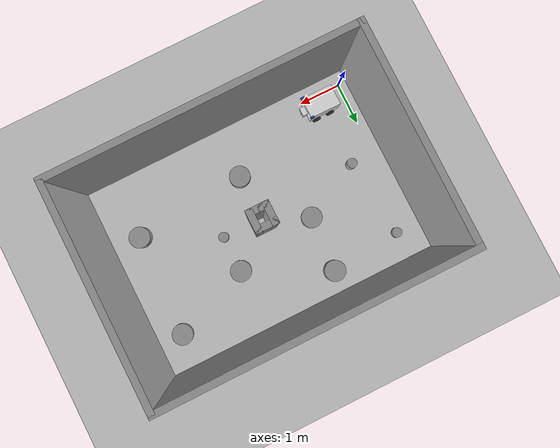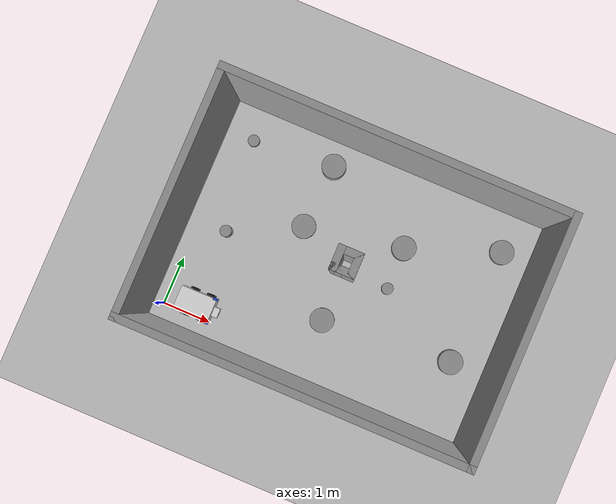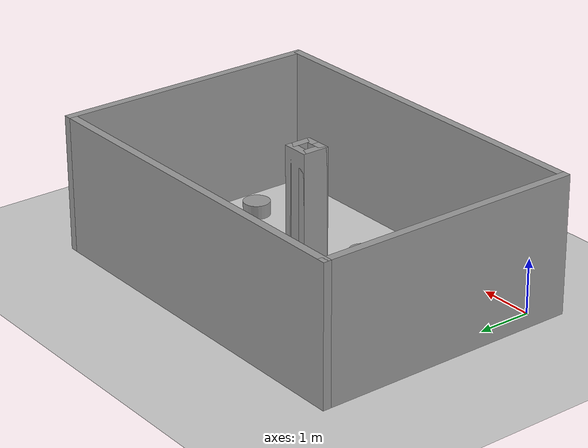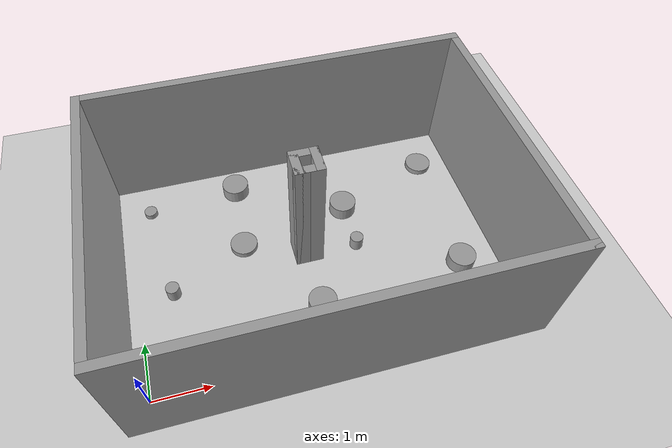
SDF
<sdf version="1.6">
 <world name="default">
  <light name="sun" type="directional">
   <pose>0 0 10 0 -0 0</pose>
   <diffuse>0.8 0.8 0.8 1</diffuse>
   <specular>0.2 0.2 0.2 1</specular>
   <attenuation>
    <range>1000</range>
    <constant>0.9</constant>
    <linear>0.01</linear>
    <quadratic>0.001</quadratic>
   </attenuation>
   <direction>-0.5 0.1 -0.9</direction>
  </light>
  <model name="ground_plane">
   <static>1</static>
   <link name="link">
    <collision name="collision">
     <geometry><plane><normal>0 0 1</normal><size>100 100</size></plane></geometry>
     <surface>
      <contact><collide_bitmask>65535</collide_bitmask></contact>
      <friction><ode><mu>100</mu><mu2>50</mu2></ode></friction>
     </surface>
    </collision>
    <visual name="visual">
     <cast_shadows>0</cast_shadows>
     <geometry><plane><normal>0 0 1</normal><size>100 100</size></plane></geometry>
     <material>
      <script><uri>file://media/materials/scripts/gazebo.material</uri><name>Gazebo/Grey</name></script>
     </material>
    </visual>
   </link>
  </model>
  <gravity>0 0 -9.8</gravity>
  <magnetic_field>6e-06 2.3e-05 -4.2e-05</magnetic_field>
  <atmosphere type="adiabatic"/>
  <physics name="default_physics" default="0" type="ode">
   <max_step_size>0.001</max_step_size>
   <real_time_factor>1</real_time_factor>
   <real_time_update_rate>1000</real_time_update_rate>
  </physics>
  <scene><ambient>0.4 0.4 0.4 1</ambient><background>0.7 0.7 0.7 1</background><shadows>1</shadows></scene>
  <audio><device>default</device></audio>
  <spherical_coordinates>
   <surface_model>EARTH_WGS84</surface_model>
   <latitude_deg>0</latitude_deg>
   <longitude_deg>0</longitude_deg>
   <elevation>0</elevation>
   <heading_deg>0</heading_deg>
  </spherical_coordinates>
  <model name="Arena">
   <link name="Wall_38">
    <pose>0.212613 2.64146 0 0 -0 3.14159</pose>
    <visual name="Wall_38_Visual">
     <pose>0 0 1.25 0 -0 0</pose>
     <geometry><box><size>7 0.15 2.5</size></box></geometry>
     <material>
      <script><uri>file://media/materials/scripts/gazebo.material</uri><name>Gazebo/Grey</name></script>
      <ambient>1 1 1 1</ambient>
     </material>
     <meta><layer>0</layer></meta>
    </visual>
    <collision name="Wall_38_Collision">
     <pose>0 0 1.25 0 -0 0</pose>
     <geometry><box><size>7 0.15 2.5</size></box></geometry>
     <surface>
      <friction>
       <ode><mu>1</mu><mu2>1</mu2><fdir1>0 0 0</fdir1><slip1>0</slip1><slip2>0</slip2></ode>
       <torsional>
        <coefficient>1</coefficient>
        <patch_radius>0</patch_radius>
        <surface_radius>0</surface_radius>
        <use_patch_radius>1</use_patch_radius>
        <ode><slip>0</slip></ode>
       </torsional>
      </friction>
      <bounce><restitution_coefficient>0</restitution_coefficient><threshold>1e+06</threshold></bounce>
      <contact>
       <collide_without_contact>0</collide_without_contact>
       <collide_without_contact_bitmask>1</collide_without_contact_bitmask>
       <collide_bitmask>1</collide_bitmask>
       <ode>
        <soft_cfm>0</soft_cfm>
        <soft_erp>0.2</soft_erp>
        <kp>1e+13</kp>
        <kd>1</kd>
        <max_vel>0.01</max_vel>
        <min_depth>0</min_depth>
       </ode>
       <bullet>
        <split_impulse>1</split_impulse>
        <split_impulse_penetration_threshold>-0.01</split_impulse_penetration_threshold>
        <soft_cfm>0</soft_cfm>
        <soft_erp>0.2</soft_erp>
        <kp>1e+13</kp>
        <kd>1</kd>
       </bullet>
      </contact>
     </surface>
    </collision>
   </link>
   <link name="Wall_39">
    <pose>-3.21239 0.216461 0 0 0 -1.5708</pose>
    <visual name="Wall_39_Visual">
     <pose>0 0 1.25 0 -0 0</pose>
     <geometry><box><size>5 0.15 2.5</size></box></geometry>
     <material>
      <script><uri>file://media/materials/scripts/gazebo.material</uri><name>Gazebo/Grey</name></script>
      <ambient>1 1 1 1</ambient>
     </material>
     <meta><layer>0</layer></meta>
    </visual>
    <collision name="Wall_39_Collision">
     <pose>0 0 1.25 0 -0 0</pose>
     <geometry><box><size>5 0.15 2.5</size></box></geometry>
     <surface>
      <friction>
       <ode><mu>1</mu><mu2>1</mu2><fdir1>0 0 0</fdir1><slip1>0</slip1><slip2>0</slip2></ode>
       <torsional>
        <coefficient>1</coefficient>
        <patch_radius>0</patch_radius>
        <surface_radius>0</surface_radius>
        <use_patch_radius>1</use_patch_radius>
        <ode><slip>0</slip></ode>
       </torsional>
      </friction>
      <bounce><restitution_coefficient>0</restitution_coefficient><threshold>1e+06</threshold></bounce>
      <contact>
       <collide_without_contact>0</collide_without_contact>
       <collide_without_contact_bitmask>1</collide_without_contact_bitmask>
       <collide_bitmask>1</collide_bitmask>
       <ode>
        <soft_cfm>0</soft_cfm>
        <soft_erp>0.2</soft_erp>
        <kp>1e+13</kp>
        <kd>1</kd>
        <max_vel>0.01</max_vel>
        <min_depth>0</min_depth>
       </ode>
       <bullet>
        <split_impulse>1</split_impulse>
        <split_impulse_penetration_threshold>-0.01</split_impulse_penetration_threshold>
        <soft_cfm>0</soft_cfm>
        <soft_erp>0.2</soft_erp>
        <kp>1e+13</kp>
        <kd>1</kd>
       </bullet>
      </contact>
     </surface>
    </collision>
   </link>
   <link name="Wall_40">
    <pose>0.212613 -2.20854 0 0 -0 0</pose>
    <visual name="Wall_40_Visual">
     <pose>0 0 1.25 0 -0 0</pose>
     <geometry><box><size>7 0.15 2.5</size></box></geometry>
     <material>
      <script><uri>file://media/materials/scripts/gazebo.material</uri><name>Gazebo/Grey</name></script>
      <ambient>1 1 1 1</ambient>
     </material>
     <meta><layer>0</layer></meta>
    </visual>
    <collision name="Wall_40_Collision">
     <pose>0 0 1.25 0 -0 0</pose>
     <geometry><box><size>7 0.15 2.5</size></box></geometry>
     <surface>
      <friction>
       <ode><mu>1</mu><mu2>1</mu2><fdir1>0 0 0</fdir1><slip1>0</slip1><slip2>0</slip2></ode>
       <torsional>
        <coefficient>1</coefficient>
        <patch_radius>0</patch_radius>
        <surface_radius>0</surface_radius>
        <use_patch_radius>1</use_patch_radius>
        <ode><slip>0</slip></ode>
       </torsional>
      </friction>
      <bounce><restitution_coefficient>0</restitution_coefficient><threshold>1e+06</threshold></bounce>
      <contact>
       <collide_without_contact>0</collide_without_contact>
       <collide_without_contact_bitmask>1</collide_without_contact_bitmask>
       <collide_bitmask>1</collide_bitmask>
       <ode>
        <soft_cfm>0</soft_cfm>
        <soft_erp>0.2</soft_erp>
        <kp>1e+13</kp>
        <kd>1</kd>
        <max_vel>0.01</max_vel>
        <min_depth>0</min_depth>
       </ode>
       <bullet>
        <split_impulse>1</split_impulse>
        <split_impulse_penetration_threshold>-0.01</split_impulse_penetration_threshold>
        <soft_cfm>0</soft_cfm>
        <soft_erp>0.2</soft_erp>
        <kp>1e+13</kp>
        <kd>1</kd>
       </bullet>
      </contact>
     </surface>
    </collision>
   </link>
   <link name="Wall_41">
    <pose>3.63761 0.216461 0 0 -0 1.5708</pose>
    <visual name="Wall_41_Visual">
     <pose>0 0 1.25 0 -0 0</pose>
     <geometry><box><size>5 0.15 2.5</size></box></geometry>
     <material>
      <script><uri>file://media/materials/scripts/gazebo.material</uri><name>Gazebo/Grey</name></script>
      <ambient>1 1 1 1</ambient>
     </material>
     <meta><layer>0</layer></meta>
    </visual>
    <collision name="Wall_41_Collision">
     <pose>0 0 1.25 0 -0 0</pose>
     <geometry><box><size>5 0.15 2.5</size></box></geometry>
     <surface>
      <friction>
       <ode><mu>1</mu><mu2>1</mu2><fdir1>0 0 0</fdir1><slip1>0</slip1><slip2>0</slip2></ode>
       <torsional>
        <coefficient>1</coefficient>
        <patch_radius>0</patch_radius>
        <surface_radius>0</surface_radius>
        <use_patch_radius>1</use_patch_radius>
        <ode><slip>0</slip></ode>
       </torsional>
      </friction>
      <bounce><restitution_coefficient>0</restitution_coefficient><threshold>1e+06</threshold></bounce>
      <contact>
       <collide_without_contact>0</collide_without_contact>
       <collide_without_contact_bitmask>1</collide_without_contact_bitmask>
       <collide_bitmask>1</collide_bitmask>
       <ode>
        <soft_cfm>0</soft_cfm>
        <soft_erp>0.2</soft_erp>
        <kp>1e+13</kp>
        <kd>1</kd>
        <max_vel>0.01</max_vel>
        <min_depth>0</min_depth>
       </ode>
       <bullet>
        <split_impulse>1</split_impulse>
        <split_impulse_penetration_threshold>-0.01</split_impulse_penetration_threshold>
        <soft_cfm>0</soft_cfm>
        <soft_erp>0.2</soft_erp>
        <kp>1e+13</kp>
        <kd>1</kd>
       </bullet>
      </contact>
     </surface>
    </collision>
   </link>
   <link name="Wall_55">
    <pose>0.062882 0.122971 0 0 -0 3.14159</pose>
    <visual name="Wall_55_Visual">
     <pose>0 0 1.25 0 -0 0</pose>
     <geometry><box><size>0.25 0.15 2.5</size></box></geometry>
     <material>
      <script><uri>file://media/materials/scripts/gazebo.material</uri><name>Gazebo/Grey</name></script>
      <ambient>1 1 1 1</ambient>
     </material>
     <meta><layer>0</layer></meta>
    </visual>
    <collision name="Wall_55_Collision">
     <pose>0 0 1.25 0 -0 0</pose>
     <geometry><box><size>0.25 0.15 2.5</size></box></geometry>
     <surface>
      <friction>
       <ode><mu>1</mu><mu2>1</mu2><fdir1>0 0 0</fdir1><slip1>0</slip1><slip2>0</slip2></ode>
       <torsional>
        <coefficient>1</coefficient>
        <patch_radius>0</patch_radius>
        <surface_radius>0</surface_radius>
        <use_patch_radius>1</use_patch_radius>
        <ode><slip>0</slip></ode>
       </torsional>
      </friction>
      <bounce><restitution_coefficient>0</restitution_coefficient><threshold>1e+06</threshold></bounce>
      <contact>
       <collide_without_contact>0</collide_without_contact>
       <collide_without_contact_bitmask>1</collide_without_contact_bitmask>
       <collide_bitmask>1</collide_bitmask>
       <ode>
        <soft_cfm>0</soft_cfm>
        <soft_erp>0.2</soft_erp>
        <kp>1e+13</kp>
        <kd>1</kd>
        <max_vel>0.01</max_vel>
        <min_depth>0</min_depth>
       </ode>
       <bullet>
        <split_impulse>1</split_impulse>
        <split_impulse_penetration_threshold>-0.01</split_impulse_penetration_threshold>
        <soft_cfm>0</soft_cfm>
        <soft_erp>0.2</soft_erp>
        <kp>1e+13</kp>
        <kd>1</kd>
       </bullet>
      </contact>
     </surface>
    </collision>
   </link>
   <link name="Wall_56">
    <pose>0.012882 0.297971 0 0 -0 1.5708</pose>
    <visual name="Wall_56_Visual">
     <pose>0 0 1.25 0 -0 0</pose>
     <geometry><box><size>0.5 0.15 2.5</size></box></geometry>
     <material>
      <script><uri>file://media/materials/scripts/gazebo.material</uri><name>Gazebo/Grey</name></script>
      <ambient>1 1 1 1</ambient>
     </material>
     <meta><layer>0</layer></meta>
    </visual>
    <collision name="Wall_56_Collision">
     <pose>0 0 1.25 0 -0 0</pose>
     <geometry><box><size>0.5 0.15 2.5</size></box></geometry>
     <surface>
      <friction>
       <ode><mu>1</mu><mu2>1</mu2><fdir1>0 0 0</fdir1><slip1>0</slip1><slip2>0</slip2></ode>
       <torsional>
        <coefficient>1</coefficient>
        <patch_radius>0</patch_radius>
        <surface_radius>0</surface_radius>
        <use_patch_radius>1</use_patch_radius>
        <ode><slip>0</slip></ode>
       </torsional>
      </friction>
      <bounce><restitution_coefficient>0</restitution_coefficient><threshold>1e+06</threshold></bounce>
      <contact>
       <collide_without_contact>0</collide_without_contact>
       <collide_without_contact_bitmask>1</collide_without_contact_bitmask>
       <collide_bitmask>1</collide_bitmask>
       <ode>
        <soft_cfm>0</soft_cfm>
        <soft_erp>0.2</soft_erp>
        <kp>1e+13</kp>
        <kd>1</kd>
        <max_vel>0.01</max_vel>
        <min_depth>0</min_depth>
       </ode>
       <bullet>
        <split_impulse>1</split_impulse>
        <split_impulse_penetration_threshold>-0.01</split_impulse_penetration_threshold>
        <soft_cfm>0</soft_cfm>
        <soft_erp>0.2</soft_erp>
        <kp>1e+13</kp>
        <kd>1</kd>
       </bullet>
      </contact>
     </surface>
    </collision>
   </link>
   <link name="Wall_57">
    <pose>0.187882 0.472971 0 0 -0 0</pose>
    <visual name="Wall_57_Visual">
     <pose>0 0 1.25 0 -0 0</pose>
     <geometry><box><size>0.5 0.15 2.5</size></box></geometry>
     <material>
      <script><uri>file://media/materials/scripts/gazebo.material</uri><name>Gazebo/Grey</name></script>
      <ambient>1 1 1 1</ambient>
     </material>
     <meta><layer>0</layer></meta>
    </visual>
    <collision name="Wall_57_Collision">
     <pose>0 0 1.25 0 -0 0</pose>
     <geometry><box><size>0.5 0.15 2.5</size></box></geometry>
     <surface>
      <friction>
       <ode><mu>1</mu><mu2>1</mu2><fdir1>0 0 0</fdir1><slip1>0</slip1><slip2>0</slip2></ode>
       <torsional>
        <coefficient>1</coefficient>
        <patch_radius>0</patch_radius>
        <surface_radius>0</surface_radius>
        <use_patch_radius>1</use_patch_radius>
        <ode><slip>0</slip></ode>
       </torsional>
      </friction>
      <bounce><restitution_coefficient>0</restitution_coefficient><threshold>1e+06</threshold></bounce>
      <contact>
       <collide_without_contact>0</collide_without_contact>
       <collide_without_contact_bitmask>1</collide_without_contact_bitmask>
       <collide_bitmask>1</collide_bitmask>
       <ode>
        <soft_cfm>0</soft_cfm>
        <soft_erp>0.2</soft_erp>
        <kp>1e+13</kp>
        <kd>1</kd>
        <max_vel>0.01</max_vel>
        <min_depth>0</min_depth>
       </ode>
       <bullet>
        <split_impulse>1</split_impulse>
        <split_impulse_penetration_threshold>-0.01</split_impulse_penetration_threshold>
        <soft_cfm>0</soft_cfm>
        <soft_erp>0.2</soft_erp>
        <kp>1e+13</kp>
        <kd>1</kd>
       </bullet>
      </contact>
     </surface>
    </collision>
   </link>
   <link name="Wall_58">
    <pose>0.362882 0.297971 0 0 0 -1.5708</pose>
    <visual name="Wall_58_Visual">
     <pose>0 0 1.25 0 -0 0</pose>
     <geometry><box><size>0.5 0.15 2.5</size></box></geometry>
     <material>
      <script><uri>file://media/materials/scripts/gazebo.material</uri><name>Gazebo/Grey</name></script>
      <ambient>1 1 1 1</ambient>
     </material>
     <meta><layer>0</layer></meta>
    </visual>
    <collision name="Wall_58_Collision">
     <pose>0 0 1.25 0 -0 0</pose>
     <geometry><box><size>0.5 0.15 2.5</size></box></geometry>
     <surface>
      <friction>
       <ode><mu>1</mu><mu2>1</mu2><fdir1>0 0 0</fdir1><slip1>0</slip1><slip2>0</slip2></ode>
       <torsional>
        <coefficient>1</coefficient>
        <patch_radius>0</patch_radius>
        <surface_radius>0</surface_radius>
        <use_patch_radius>1</use_patch_radius>
        <ode><slip>0</slip></ode>
       </torsional>
      </friction>
      <bounce><restitution_coefficient>0</restitution_coefficient><threshold>1e+06</threshold></bounce>
      <contact>
       <collide_without_contact>0</collide_without_contact>
       <collide_without_contact_bitmask>1</collide_without_contact_bitmask>
       <collide_bitmask>1</collide_bitmask>
       <ode>
        <soft_cfm>0</soft_cfm>
        <soft_erp>0.2</soft_erp>
        <kp>1e+13</kp>
        <kd>1</kd>
        <max_vel>0.01</max_vel>
        <min_depth>0</min_depth>
       </ode>
       <bullet>
        <split_impulse>1</split_impulse>
        <split_impulse_penetration_threshold>-0.01</split_impulse_penetration_threshold>
        <soft_cfm>0</soft_cfm>
        <soft_erp>0.2</soft_erp>
        <kp>1e+13</kp>
        <kd>1</kd>
       </bullet>
      </contact>
     </surface>
    </collision>
   </link>
   <link name="Wall_59">
    <pose>0.187882 0.122971 0 0 -0 3.14159</pose>
    <visual name="Wall_59_Visual">
     <pose>0 0 1.25 0 -0 0</pose>
     <geometry><box><size>0.5 0.15 2.5</size></box></geometry>
     <material>
      <script><uri>file://media/materials/scripts/gazebo.material</uri><name>Gazebo/Grey</name></script>
      <ambient>1 1 1 1</ambient>
     </material>
     <meta><layer>0</layer></meta>
    </visual>
    <collision name="Wall_59_Collision">
     <pose>0 0 1.25 0 -0 0</pose>
     <geometry><box><size>0.5 0.15 2.5</size></box></geometry>
     <surface>
      <friction>
       <ode><mu>1</mu><mu2>1</mu2><fdir1>0 0 0</fdir1><slip1>0</slip1><slip2>0</slip2></ode>
       <torsional>
        <coefficient>1</coefficient>
        <patch_radius>0</patch_radius>
        <surface_radius>0</surface_radius>
        <use_patch_radius>1</use_patch_radius>
        <ode><slip>0</slip></ode>
       </torsional>
      </friction>
      <bounce><restitution_coefficient>0</restitution_coefficient><threshold>1e+06</threshold></bounce>
      <contact>
       <collide_without_contact>0</collide_without_contact>
       <collide_without_contact_bitmask>1</collide_without_contact_bitmask>
       <collide_bitmask>1</collide_bitmask>
       <ode>
        <soft_cfm>0</soft_cfm>
        <soft_erp>0.2</soft_erp>
        <kp>1e+13</kp>
        <kd>1</kd>
        <max_vel>0.01</max_vel>
        <min_depth>0</min_depth>
       </ode>
       <bullet>
        <split_impulse>1</split_impulse>
        <split_impulse_penetration_threshold>-0.01</split_impulse_penetration_threshold>
        <soft_cfm>0</soft_cfm>
        <soft_erp>0.2</soft_erp>
        <kp>1e+13</kp>
        <kd>1</kd>
       </bullet>
      </contact>
     </surface>
    </collision>
   </link>
   <static>1</static>
   <pose>2.92522 1.82891 0 0 -0 0</pose>
  </model>
  <model name="Pit">
   <link name="link_0">
    <inertial>
     <mass>1</mass>
     <inertia><ixx>0.145833</ixx><ixy>0</ixy><ixz>0</ixz><iyy>0.145833</iyy><iyz>0</iyz><izz>0.125</izz></inertia>
    </inertial>
    <visual name="visual">
     <geometry><cylinder><radius>0.25</radius><length>0.2</length></cylinder></geometry>
     <material>
      <lighting>1</lighting>
      <script><uri>file://media/materials/scripts/gazebo.material</uri><name>Gazebo/Grey</name></script>
      <shader type="vertex"><normal_map>__default__</normal_map></shader>
      <ambient>0.3 0.3 0.3 1</ambient>
      <diffuse>0.7 0.7 0.7 1</diffuse>
      <specular>0.01 0.01 0.01 1</specular>
      <emissive>0 0 0 1</emissive>
     </material>
    </visual>
    <collision name="collision">
     <geometry><cylinder><radius>0.25</radius><length>0.2</length></cylinder></geometry>
     <surface>
      <friction>
       <ode><mu>1</mu><mu2>1</mu2><fdir1>0 0 0</fdir1><slip1>0</slip1><slip2>0</slip2></ode>
       <torsional>
        <coefficient>1</coefficient>
        <patch_radius>0</patch_radius>
        <surface_radius>0</surface_radius>
        <use_patch_radius>1</use_patch_radius>
        <ode><slip>0</slip></ode>
       </torsional>
      </friction>
      <bounce><restitution_coefficient>0</restitution_coefficient><threshold>1e+06</threshold></bounce>
      <contact>
       <collide_without_contact>0</collide_without_contact>
       <collide_without_contact_bitmask>1</collide_without_contact_bitmask>
       <collide_bitmask>1</collide_bitmask>
       <ode>
        <soft_cfm>0</soft_cfm>
        <soft_erp>0.2</soft_erp>
        <kp>1e+13</kp>
        <kd>1</kd>
        <max_vel>0.01</max_vel>
        <min_depth>0</min_depth>
       </ode>
       <bullet>
        <split_impulse>1</split_impulse>
        <split_impulse_penetration_threshold>-0.01</split_impulse_penetration_threshold>
        <soft_cfm>0</soft_cfm>
        <soft_erp>0.2</soft_erp>
        <kp>1e+13</kp>
        <kd>1</kd>
       </bullet>
      </contact>
     </surface>
    </collision>
   </link>
   <static>1</static>
   <pose>1.99888 2.53722 0 0 -0 0</pose>
  </model>
  <model name="Small_Pit">
   <link name="link_0">
    <inertial>
     <mass>1</mass>
     <inertia><ixx>0.145833</ixx><ixy>0</ixy><ixz>0</ixz><iyy>0.145833</iyy><iyz>0</iyz><izz>0.125</izz></inertia>
    </inertial>
    <visual name="visual">
     <geometry><cylinder><radius>0.12</radius><length>0.2</length></cylinder></geometry>
     <material>
      <lighting>1</lighting>
      <script><uri>file://media/materials/scripts/gazebo.material</uri><name>Gazebo/Grey</name></script>
      <shader type="vertex"><normal_map>__default__</normal_map></shader>
      <ambient>0.3 0.3 0.3 1</ambient>
      <diffuse>0.7 0.7 0.7 1</diffuse>
      <specular>0.01 0.01 0.01 1</specular>
      <emissive>0 0 0 1</emissive>
     </material>
    </visual>
    <collision name="collision">
     <geometry><cylinder><radius>0.12</radius><length>0.2</length></cylinder></geometry>
     <surface>
      <friction>
       <ode><mu>1</mu><mu2>1</mu2><fdir1>0 0 0</fdir1><slip1>0</slip1><slip2>0</slip2></ode>
       <torsional>
        <coefficient>1</coefficient>
        <patch_radius>0</patch_radius>
        <surface_radius>0</surface_radius>
        <use_patch_radius>1</use_patch_radius>
        <ode><slip>0</slip></ode>
       </torsional>
      </friction>
      <bounce><restitution_coefficient>0</restitution_coefficient><threshold>1e+06</threshold></bounce>
      <contact>
       <collide_without_contact>0</collide_without_contact>
       <collide_without_contact_bitmask>1</collide_without_contact_bitmask>
       <collide_bitmask>1</collide_bitmask>
       <ode>
        <soft_cfm>0</soft_cfm>
        <soft_erp>0.2</soft_erp>
        <kp>1e+13</kp>
        <kd>1</kd>
        <max_vel>0.01</max_vel>
        <min_depth>0</min_depth>
       </ode>
       <bullet>
        <split_impulse>1</split_impulse>
        <split_impulse_penetration_threshold>-0.01</split_impulse_penetration_threshold>
        <soft_cfm>0</soft_cfm>
        <soft_erp>0.2</soft_erp>
        <kp>1e+13</kp>
        <kd>1</kd>
       </bullet>
      </contact>
     </surface>
    </collision>
   </link>
   <static>1</static>
   <pose>0.37725 3.74624 0 0 -0 0</pose>
  </model>
  <model name="Small_Rock">
   <link name="link_0">
    <inertial>
     <mass>1</mass>
     <inertia><ixx>0.145833</ixx><ixy>0</ixy><ixz>0</ixz><iyy>0.145833</iyy><iyz>0</iyz><izz>0.125</izz></inertia>
    </inertial>
    <visual name="visual">
     <geometry><cylinder><radius>0.12</radius><length>0.5</length></cylinder></geometry>
     <material>
      <lighting>1</lighting>
      <script><uri>file://media/materials/scripts/gazebo.material</uri><name>Gazebo/Grey</name></script>
      <shader type="vertex"><normal_map>__default__</normal_map></shader>
      <ambient>0.3 0.3 0.3 1</ambient>
      <diffuse>0.7 0.7 0.7 1</diffuse>
      <specular>0.01 0.01 0.01 1</specular>
      <emissive>0 0 0 1</emissive>
     </material>
    </visual>
    <collision name="collision">
     <geometry><cylinder><radius>0.12</radius><length>0.5</length></cylinder></geometry>
     <surface>
      <friction>
       <ode><mu>1</mu><mu2>1</mu2><fdir1>0 0 0</fdir1><slip1>0</slip1><slip2>0</slip2></ode>
       <torsional>
        <coefficient>1</coefficient>
        <patch_radius>0</patch_radius>
        <surface_radius>0</surface_radius>
        <use_patch_radius>1</use_patch_radius>
        <ode><slip>0</slip></ode>
       </torsional>
      </friction>
      <bounce><restitution_coefficient>0</restitution_coefficient><threshold>1e+06</threshold></bounce>
      <contact>
       <collide_without_contact>0</collide_without_contact>
       <collide_without_contact_bitmask>1</collide_without_contact_bitmask>
       <collide_bitmask>1</collide_bitmask>
       <ode>
        <soft_cfm>0</soft_cfm>
        <soft_erp>0.2</soft_erp>
        <kp>1e+13</kp>
        <kd>1</kd>
        <max_vel>0.01</max_vel>
        <min_depth>0</min_depth>
       </ode>
       <bullet>
        <split_impulse>1</split_impulse>
        <split_impulse_penetration_threshold>-0.01</split_impulse_penetration_threshold>
        <soft_cfm>0</soft_cfm>
        <soft_erp>0.2</soft_erp>
        <kp>1e+13</kp>
        <kd>1</kd>
       </bullet>
      </contact>
     </surface>
    </collision>
   </link>
   <static>1</static>
   <pose>4.04772 2.03198 0 0 -0 0</pose>
  </model>
  <model name="Pit_0">
   <link name="link_0">
    <inertial>
     <mass>1</mass>
     <inertia><ixx>0.145833</ixx><ixy>0</ixy><ixz>0</ixz><iyy>0.145833</iyy><iyz>0</iyz><izz>0.125</izz></inertia>
    </inertial>
    <visual name="visual">
     <geometry><cylinder><radius>0.25</radius><length>0.2</length></cylinder></geometry>
     <material>
      <lighting>1</lighting>
      <script><uri>file://media/materials/scripts/gazebo.material</uri><name>Gazebo/Grey</name></script>
      <shader type="vertex"><normal_map>__default__</normal_map></shader>
      <ambient>0.3 0.3 0.3 1</ambient>
      <diffuse>0.7 0.7 0.7 1</diffuse>
      <specular>0.01 0.01 0.01 1</specular>
      <emissive>0 0 0 1</emissive>
     </material>
    </visual>
    <collision name="collision">
     <geometry><cylinder><radius>0.25</radius><length>0.2</length></cylinder></geometry>
     <surface>
      <friction>
       <ode><mu>1</mu><mu2>1</mu2><fdir1>0 0 0</fdir1><slip1>0</slip1><slip2>0</slip2></ode>
       <torsional>
        <coefficient>1</coefficient>
        <patch_radius>0</patch_radius>
        <surface_radius>0</surface_radius>
        <use_patch_radius>1</use_patch_radius>
        <ode><slip>0</slip></ode>
       </torsional>
      </friction>
      <bounce><restitution_coefficient>0</restitution_coefficient><threshold>1e+06</threshold></bounce>
      <contact>
       <collide_without_contact>0</collide_without_contact>
       <collide_without_contact_bitmask>1</collide_without_contact_bitmask>
       <collide_bitmask>1</collide_bitmask>
       <ode>
        <soft_cfm>0</soft_cfm>
        <soft_erp>0.2</soft_erp>
        <kp>1e+13</kp>
        <kd>1</kd>
        <max_vel>0.01</max_vel>
        <min_depth>0</min_depth>
       </ode>
       <bullet>
        <split_impulse>1</split_impulse>
        <split_impulse_penetration_threshold>-0.01</split_impulse_penetration_threshold>
        <soft_cfm>0</soft_cfm>
        <soft_erp>0.2</soft_erp>
        <kp>1e+13</kp>
        <kd>1</kd>
       </bullet>
      </contact>
     </surface>
    </collision>
   </link>
   <static>1</static>
   <pose>5.90245 3.6167 0 0 -0 0</pose>
  </model>
  <model name="Rock">
   <link name="link_0">
    <inertial>
     <mass>1</mass>
     <inertia><ixx>0.145833</ixx><ixy>0</ixy><ixz>0</ixz><iyy>0.145833</iyy><iyz>0</iyz><izz>0.125</izz></inertia>
    </inertial>
    <visual name="visual">
     <geometry><cylinder><radius>0.25</radius><length>0.5</length></cylinder></geometry>
     <material>
      <lighting>1</lighting>
      <script><uri>file://media/materials/scripts/gazebo.material</uri><name>Gazebo/Grey</name></script>
      <shader type="vertex"><normal_map>__default__</normal_map></shader>
      <ambient>0.3 0.3 0.3 1</ambient>
      <diffuse>0.7 0.7 0.7 1</diffuse>
      <specular>0.01 0.01 0.01 1</specular>
      <emissive>0 0 0 1</emissive>
     </material>
    </visual>
    <collision name="collision">
     <geometry><cylinder><radius>0.25</radius><length>0.5</length></cylinder></geometry>
     <surface>
      <friction>
       <ode><mu>1</mu><mu2>1</mu2><fdir1>0 0 0</fdir1><slip1>0</slip1><slip2>0</slip2></ode>
       <torsional>
        <coefficient>1</coefficient>
        <patch_radius>0</patch_radius>
        <surface_radius>0</surface_radius>
        <use_patch_radius>1</use_patch_radius>
        <ode><slip>0</slip></ode>
       </torsional>
      </friction>
      <bounce><restitution_coefficient>0</restitution_coefficient><threshold>1e+06</threshold></bounce>
      <contact>
       <collide_without_contact>0</collide_without_contact>
       <collide_without_contact_bitmask>1</collide_without_contact_bitmask>
       <collide_bitmask>1</collide_bitmask>
       <ode>
        <soft_cfm>0</soft_cfm>
        <soft_erp>0.2</soft_erp>
        <kp>1e+13</kp>
        <kd>1</kd>
        <max_vel>0.01</max_vel>
        <min_depth>0</min_depth>
       </ode>
       <bullet>
        <split_impulse>1</split_impulse>
        <split_impulse_penetration_threshold>-0.01</split_impulse_penetration_threshold>
        <soft_cfm>0</soft_cfm>
        <soft_erp>0.2</soft_erp>
        <kp>1e+13</kp>
        <kd>1</kd>
       </bullet>
      </contact>
     </surface>
    </collision>
   </link>
   <static>1</static>
   <pose>5.78626 1.16924 0 0 -0 0</pose>
  </model>
  <model name="Rock_0">
   <link name="link_0">
    <inertial>
     <mass>1</mass>
     <inertia><ixx>0.145833</ixx><ixy>0</ixy><ixz>0</ixz><iyy>0.145833</iyy><iyz>0</iyz><izz>0.125</izz></inertia>
    </inertial>
    <visual name="visual">
     <geometry><cylinder><radius>0.25</radius><length>0.5</length></cylinder></geometry>
     <material>
      <lighting>1</lighting>
      <script><uri>file://media/materials/scripts/gazebo.material</uri><name>Gazebo/Grey</name></script>
      <shader type="vertex"><normal_map>__default__</normal_map></shader>
      <ambient>0.3 0.3 0.3 1</ambient>
      <diffuse>0.7 0.7 0.7 1</diffuse>
      <specular>0.01 0.01 0.01 1</specular>
      <emissive>0 0 0 1</emissive>
     </material>
    </visual>
    <collision name="collision">
     <geometry><cylinder><radius>0.25</radius><length>0.5</length></cylinder></geometry>
     <surface>
      <friction>
       <ode><mu>1</mu><mu2>1</mu2><fdir1>0 0 0</fdir1><slip1>0</slip1><slip2>0</slip2></ode>
       <torsional>
        <coefficient>1</coefficient>
        <patch_radius>0</patch_radius>
        <surface_radius>0</surface_radius>
        <use_patch_radius>1</use_patch_radius>
        <ode><slip>0</slip></ode>
       </torsional>
      </friction>
      <bounce><restitution_coefficient>0</restitution_coefficient><threshold>1e+06</threshold></bounce>
      <contact>
       <collide_without_contact>0</collide_without_contact>
       <collide_without_contact_bitmask>1</collide_without_contact_bitmask>
       <collide_bitmask>1</collide_bitmask>
       <ode>
        <soft_cfm>0</soft_cfm>
        <soft_erp>0.2</soft_erp>
        <kp>1e+13</kp>
        <kd>1</kd>
        <max_vel>0.01</max_vel>
        <min_depth>0</min_depth>
       </ode>
       <bullet>
        <split_impulse>1</split_impulse>
        <split_impulse_penetration_threshold>-0.01</split_impulse_penetration_threshold>
        <soft_cfm>0</soft_cfm>
        <soft_erp>0.2</soft_erp>
        <kp>1e+13</kp>
        <kd>1</kd>
       </bullet>
      </contact>
     </surface>
    </collision>
   </link>
   <static>1</static>
   <pose>3.08496 0.93504 0 0 -0 0</pose>
  </model>
  <model name="Small_Rock_0">
   <link name="link_0">
    <inertial>
     <mass>1</mass>
     <inertia><ixx>0.145833</ixx><ixy>0</ixy><ixz>0</ixz><iyy>0.145833</iyy><iyz>0</iyz><izz>0.125</izz></inertia>
    </inertial>
    <visual name="visual">
     <geometry><cylinder><radius>0.12</radius><length>0.5</length></cylinder></geometry>
     <material>
      <lighting>1</lighting>
      <script><uri>file://media/materials/scripts/gazebo.material</uri><name>Gazebo/Grey</name></script>
      <shader type="vertex"><normal_map>__default__</normal_map></shader>
      <ambient>0.3 0.3 0.3 1</ambient>
      <diffuse>0.7 0.7 0.7 1</diffuse>
      <specular>0.01 0.01 0.01 1</specular>
      <emissive>0 0 0 1</emissive>
     </material>
    </visual>
    <collision name="collision">
     <geometry><cylinder><radius>0.12</radius><length>0.5</length></cylinder></geometry>
     <surface>
      <friction>
       <ode><mu>1</mu><mu2>1</mu2><fdir1>0 0 0</fdir1><slip1>0</slip1><slip2>0</slip2></ode>
       <torsional>
        <coefficient>1</coefficient>
        <patch_radius>0</patch_radius>
        <surface_radius>0</surface_radius>
        <use_patch_radius>1</use_patch_radius>
        <ode><slip>0</slip></ode>
       </torsional>
      </friction>
      <bounce><restitution_coefficient>0</restitution_coefficient><threshold>1e+06</threshold></bounce>
      <contact>
       <collide_without_contact>0</collide_without_contact>
       <collide_without_contact_bitmask>1</collide_without_contact_bitmask>
       <collide_bitmask>1</collide_bitmask>
       <ode>
        <soft_cfm>0</soft_cfm>
        <soft_erp>0.2</soft_erp>
        <kp>1e+13</kp>
        <kd>1</kd>
        <max_vel>0.01</max_vel>
        <min_depth>0</min_depth>
       </ode>
       <bullet>
        <split_impulse>1</split_impulse>
        <split_impulse_penetration_threshold>-0.01</split_impulse_penetration_threshold>
        <soft_cfm>0</soft_cfm>
        <soft_erp>0.2</soft_erp>
        <kp>1e+13</kp>
        <kd>1</kd>
       </bullet>
      </contact>
     </surface>
    </collision>
   </link>
   <static>1</static>
   <pose>0.600399 1.83087 0 0 -0 0</pose>
  </model>
  <model name="Rock_1">
   <link name="link_0">
    <inertial>
     <mass>1</mass>
     <inertia><ixx>0.145833</ixx><ixy>0</ixy><ixz>0</ixz><iyy>0.145833</iyy><iyz>0</iyz><izz>0.125</izz></inertia>
    </inertial>
    <visual name="visual">
     <geometry><cylinder><radius>0.25</radius><length>0.5</length></cylinder></geometry>
     <material>
      <lighting>1</lighting>
      <script><uri>file://media/materials/scripts/gazebo.material</uri><name>Gazebo/Grey</name></script>
      <shader type="vertex"><normal_map>__default__</normal_map></shader>
      <ambient>0.3 0.3 0.3 1</ambient>
      <diffuse>0.7 0.7 0.7 1</diffuse>
      <specular>0.01 0.01 0.01 1</specular>
      <emissive>0 0 0 1</emissive>
     </material>
    </visual>
    <collision name="collision">
     <geometry><cylinder><radius>0.25</radius><length>0.5</length></cylinder></geometry>
     <surface>
      <friction>
       <ode><mu>1</mu><mu2>1</mu2><fdir1>0 0 0</fdir1><slip1>0</slip1><slip2>0</slip2></ode>
       <torsional>
        <coefficient>1</coefficient>
        <patch_radius>0</patch_radius>
        <surface_radius>0</surface_radius>
        <use_patch_radius>1</use_patch_radius>
        <ode><slip>0</slip></ode>
       </torsional>
      </friction>
      <bounce><restitution_coefficient>0</restitution_coefficient><threshold>1e+06</threshold></bounce>
      <contact>
       <collide_without_contact>0</collide_without_contact>
       <collide_without_contact_bitmask>1</collide_without_contact_bitmask>
       <collide_bitmask>1</collide_bitmask>
       <ode>
        <soft_cfm>0</soft_cfm>
        <soft_erp>0.2</soft_erp>
        <kp>1e+13</kp>
        <kd>1</kd>
        <max_vel>0.01</max_vel>
        <min_depth>0</min_depth>
       </ode>
       <bullet>
        <split_impulse>1</split_impulse>
        <split_impulse_penetration_threshold>-0.01</split_impulse_penetration_threshold>
        <soft_cfm>0</soft_cfm>
        <soft_erp>0.2</soft_erp>
        <kp>1e+13</kp>
        <kd>1</kd>
       </bullet>
      </contact>
     </surface>
    </collision>
   </link>
   <static>1</static>
   <pose>4.03803 2.91153 0 0 -0 0</pose>
  </model>
  <model name="my_bot">
   <link name="base_link">
    <inertial>
     <pose>0.449219 0 0.275859 0 -0 0</pose>
     <mass>51.2</mass>
     <inertia>
      <ixx>5.01072</ixx>
      <ixy>0</ixy>
      <ixz>0.198791</ixz>
      <iyy>5.29811</iyy>
      <iyz>0</iyz>
      <izz>8.08346</izz>
     </inertia>
    </inertial>
    <collision name="base_link_fixed_joint_lump__chassis_collision">
     <pose>0.4 0 0.3 0 -0 0</pose>
     <geometry><box><size>0.75 0.5 0.35</size></box></geometry>
    </collision>
    <collision name="base_link_fixed_joint_lump__distance_sensor_left_collision_1">
     <pose>0.75 -0.25 0.47 0 0.209436 0</pose>
     <geometry><box><size>0.05 0.05 0.5</size></box></geometry>
    </collision>
    <collision name="base_link_fixed_joint_lump__distance_sensor_right_collision_2">
     <pose>0.75 0.25 0.47 0 0.209436 0</pose>
     <geometry><box><size>0.05 0.05 0.5</size></box></geometry>
    </collision>
    <collision name="base_link_fixed_joint_lump__laser_arm_collision_3">
     <pose>0.8 0 0.3 0 -0 0</pose>
     <geometry><box><size>0.2 0.2 0.1</size></box></geometry>
    </collision>
    <collision name="base_link_fixed_joint_lump__laser_frame_collision_4">
     <pose>0.85 0 0.23 0 -0 0</pose>
     <geometry><cylinder><length>0.04</length><radius>0.05</radius></cylinder></geometry>
    </collision>
    <collision name="base_link_fixed_joint_lump__left_drive_wheel_3_train_collision_5">
     <pose>0.6 -0.25 0.1 -1.5708 0 0</pose>
     <geometry><cylinder><length>0.08</length><radius>0.1</radius></cylinder></geometry>
     <surface><friction><ode><mu>0.001</mu><mu2>0.001</mu2></ode></friction></surface>
    </collision>
    <collision name="base_link_fixed_joint_lump__right_drive_wheel_3_train_collision_6">
     <pose>0.6 0.25 0.1 1.5708 -0 0</pose>
     <geometry><cylinder><length>0.08</length><radius>0.1</radius></cylinder></geometry>
     <surface><friction><ode><mu>0.001</mu><mu2>0.001</mu2></ode></friction></surface>
    </collision>
    <visual name="base_link_fixed_joint_lump__chassis_visual">
     <pose>0.4 0 0.3 0 -0 0</pose>
     <geometry><box><size>0.75 0.5 0.35</size></box></geometry>
     <material>
      <script><name>Gazebo/White</name><uri>file://media/materials/scripts/gazebo.material</uri></script>
     </material>
    </visual>
    <visual name="base_link_fixed_joint_lump__distance_sensor_left_visual_1">
     <pose>0.75 -0.25 0.47 0 0.209436 0</pose>
     <geometry><box><size>0.1 0.05 0.05</size></box></geometry>
     <material>
      <script><name>Gazebo/Blue</name><uri>file://media/materials/scripts/gazebo.material</uri></script>
     </material>
    </visual>
    <visual name="base_link_fixed_joint_lump__distance_sensor_right_visual_2">
     <pose>0.75 0.25 0.47 0 0.209436 0</pose>
     <geometry><box><size>0.1 0.05 0.05</size></box></geometry>
     <material>
      <script><name>Gazebo/Blue</name><uri>file://media/materials/scripts/gazebo.material</uri></script>
     </material>
    </visual>
    <visual name="base_link_fixed_joint_lump__laser_arm_visual_3">
     <pose>0.8 0 0.3 0 -0 0</pose>
     <geometry><box><size>0.2 0.2 0.1</size></box></geometry>
     <material>
      <script><name>Gazebo/White</name><uri>file://media/materials/scripts/gazebo.material</uri></script>
     </material>
    </visual>
    <visual name="base_link_fixed_joint_lump__laser_frame_visual_4">
     <pose>0.85 0 0.23 0 -0 0</pose>
     <geometry><cylinder><length>0.04</length><radius>0.05</radius></cylinder></geometry>
     <material>
      <script><name>Gazebo/Blue</name><uri>file://media/materials/scripts/gazebo.material</uri></script>
     </material>
    </visual>
    <visual name="base_link_fixed_joint_lump__left_drive_wheel_3_train_visual_5">
     <pose>0.6 -0.25 0.1 -1.5708 0 0</pose>
     <geometry><cylinder><length>0.08</length><radius>0.1</radius></cylinder></geometry>
     <material>
      <script><name>Gazebo/Black</name><uri>file://media/materials/scripts/gazebo.material</uri></script>
     </material>
    </visual>
    <visual name="base_link_fixed_joint_lump__right_drive_wheel_3_train_visual_6">
     <pose>0.6 0.25 0.1 1.5708 -0 0</pose>
     <geometry><cylinder><length>0.08</length><radius>0.1</radius></cylinder></geometry>
     <material>
      <script><name>Gazebo/Black</name><uri>file://media/materials/scripts/gazebo.material</uri></script>
     </material>
    </visual>
    <sensor name="left_distance_sensor" type="gpu_ray">
     <visualize>1</visualize>
     <update_rate>10</update_rate>
     <ray>
      <scan>
       <horizontal>
        <samples>25</samples>
        <min_angle>-0.139626</min_angle>
        <max_angle>0.139626</max_angle>
        <resolution>1</resolution>
       </horizontal>
      </scan>
      <range><min>0.1</min><max>5</max></range>
     </ray>
     <plugin name="gazebo_distance_sensor_left" filename="libgazebo_ros_gpu_laser.so">
      <topicName>/distance_left_scan</topicName>
      <frameName>distance_sensor_left</frameName>
      <robotNamespace>/</robotNamespace>
     </plugin>
     <pose>0.75 -0.25 0.47 0 0.209436 0</pose>
    </sensor>
    <sensor name="right_distance_sensor" type="gpu_ray">
     <visualize>1</visualize>
     <update_rate>10</update_rate>
     <ray>
      <scan>
       <horizontal>
        <samples>25</samples>
        <min_angle>-0.139626</min_angle>
        <max_angle>0.139626</max_angle>
        <resolution>1</resolution>
       </horizontal>
      </scan>
      <range><min>0.1</min><max>5</max></range>
     </ray>
     <plugin name="gazebo_distance_sensor_right" filename="libgazebo_ros_gpu_laser.so">
      <topicName>/distance_right_scan</topicName>
      <frameName>distance_sensor_right</frameName>
      <robotNamespace>/</robotNamespace>
     </plugin>
     <pose>0.75 0.25 0.47 0 0.209436 0</pose>
    </sensor>
    <sensor name="lidar" type="gpu_ray">
     <visualize>1</visualize>
     <update_rate>10</update_rate>
     <ray>
      <scan>
       <horizontal>
        <samples>360</samples>
        <min_angle>-1.71</min_angle>
        <max_angle>1.71</max_angle>
        <resolution>1</resolution>
       </horizontal>
      </scan>
      <range><min>0.1</min><max>10</max></range>
     </ray>
     <plugin name="gazebo_lidar" filename="libgazebo_ros_gpu_laser.so">
      <topicName>/lidar_scan</topicName>
      <frameName>laser_frame</frameName>
      <robotNamespace>/</robotNamespace>
     </plugin>
     <pose>0.85 0 0.23 0 -0 0</pose>
    </sensor>
   </link>
   <link name="left_drive_wheel_1_train">
    <pose>0.25 -0.25 0.1 -1.5708 0 0</pose>
    <inertial>
     <mass>3</mass>
     <inertia><ixx>0.0091</ixx><ixy>0</ixy><ixz>0</ixz><iyy>0.0091</iyy><iyz>0</iyz><izz>0.015</izz></inertia>
    </inertial>
    <collision name="left_drive_wheel_1_train_collision">
     <geometry><cylinder><length>0.08</length><radius>0.1</radius></cylinder></geometry>
    </collision>
    <visual name="left_drive_wheel_1_train_visual">
     <geometry><cylinder><length>0.08</length><radius>0.1</radius></cylinder></geometry>
     <material>
      <script><name>Gazebo/Black</name><uri>file://media/materials/scripts/gazebo.material</uri></script>
     </material>
    </visual>
   </link>
   <joint name="left_drive_wheel_1_joint" type="revolute">
    <child>left_drive_wheel_1_train</child>
    <parent>base_link</parent>
    <axis>
     <xyz>0 1 0</xyz>
     <limit><lower>-1e+16</lower><upper>1e+16</upper></limit>
     <dynamics><spring_reference>0</spring_reference><spring_stiffness>0</spring_stiffness></dynamics>
     <use_parent_model_frame>1</use_parent_model_frame>
    </axis>
   </joint>
   <link name="right_drive_wheel_1_train">
    <pose>0.25 0.25 0.1 1.5708 -0 0</pose>
    <inertial>
     <mass>3</mass>
     <inertia><ixx>0.0091</ixx><ixy>0</ixy><ixz>0</ixz><iyy>0.0091</iyy><iyz>0</iyz><izz>0.015</izz></inertia>
    </inertial>
    <collision name="right_drive_wheel_1_train_collision">
     <geometry><cylinder><length>0.08</length><radius>0.1</radius></cylinder></geometry>
    </collision>
    <visual name="right_drive_wheel_1_train_visual">
     <geometry><cylinder><length>0.08</length><radius>0.1</radius></cylinder></geometry>
     <material>
      <script><name>Gazebo/Black</name><uri>file://media/materials/scripts/gazebo.material</uri></script>
     </material>
    </visual>
   </link>
   <joint name="right_drive_wheel_1_joint" type="revolute">
    <child>right_drive_wheel_1_train</child>
    <parent>base_link</parent>
    <axis>
     <xyz>0 1 -0</xyz>
     <limit><lower>-1e+16</lower><upper>1e+16</upper></limit>
     <dynamics><spring_reference>0</spring_reference><spring_stiffness>0</spring_stiffness></dynamics>
     <use_parent_model_frame>1</use_parent_model_frame>
    </axis>
   </joint>
   <static>0</static>
   <plugin name="diff_drive" filename="libgazebo_ros_diff_drive.so">
    <leftJoint>right_drive_wheel_1_joint</leftJoint>
    <rightJoint>left_drive_wheel_1_joint</rightJoint>
    <wheelSeparation>.5</wheelSeparation>
    <wheelDiameter>0.2</wheelDiameter>
    <wheelTorque>200</wheelTorque>
    <wheelAcceleration>10.0</wheelAcceleration>
    <updateRate>100.0</updateRate>
    <commandTopic>cmd_vel</commandTopic>
    <odometryTopic>odom</odometryTopic>
    <odometryFrame>odom</odometryFrame>
    <odometrySource>1</odometrySource>
    <robotBaseFrame>base_link</robotBaseFrame>
    <publish_odom>1</publish_odom>
    <publishOdomTF>1</publishOdomTF>
    <publishWheelTF>1</publishWheelTF>
    <publishTf>1</publishTf>
    <publishWheelJointState>1</publishWheelJointState>
    <rosDebugLevel>na</rosDebugLevel>
    <robotNamespace>/</robotNamespace>
   </plugin>
   <pose>0.238638 0.250058 -0 0 -1e-06 -3.9e-05</pose>
  </model>
  <model name="Rock_2">
   <link name="link_0">
    <inertial>
     <mass>1</mass>
     <inertia><ixx>0.145833</ixx><ixy>0</ixy><ixz>0</ixz><iyy>0.145833</iyy><iyz>0</iyz><izz>0.125</izz></inertia>
    </inertial>
    <visual name="visual">
     <geometry><cylinder><radius>0.25</radius><length>0.5</length></cylinder></geometry>
     <material>
      <lighting>1</lighting>
      <script><uri>file://media/materials/scripts/gazebo.material</uri><name>Gazebo/Grey</name></script>
      <shader type="vertex"><normal_map>__default__</normal_map></shader>
      <ambient>0.3 0.3 0.3 1</ambient>
      <diffuse>0.7 0.7 0.7 1</diffuse>
      <specular>0.01 0.01 0.01 1</specular>
      <emissive>0 0 0 1</emissive>
     </material>
    </visual>
    <collision name="collision">
     <geometry><cylinder><radius>0.25</radius><length>0.5</length></cylinder></geometry>
     <surface>
      <friction>
       <ode><mu>1</mu><mu2>1</mu2><fdir1>0 0 0</fdir1><slip1>0</slip1><slip2>0</slip2></ode>
       <torsional>
        <coefficient>1</coefficient>
        <patch_radius>0</patch_radius>
        <surface_radius>0</surface_radius>
        <use_patch_radius>1</use_patch_radius>
        <ode><slip>0</slip></ode>
       </torsional>
      </friction>
      <bounce><restitution_coefficient>0</restitution_coefficient><threshold>1e+06</threshold></bounce>
      <contact>
       <collide_without_contact>0</collide_without_contact>
       <collide_without_contact_bitmask>1</collide_without_contact_bitmask>
       <collide_bitmask>1</collide_bitmask>
       <ode>
        <soft_cfm>0</soft_cfm>
        <soft_erp>0.2</soft_erp>
        <kp>1e+13</kp>
        <kd>1</kd>
        <max_vel>0.01</max_vel>
        <min_depth>0</min_depth>
       </ode>
       <bullet>
        <split_impulse>1</split_impulse>
        <split_impulse_penetration_threshold>-0.01</split_impulse_penetration_threshold>
        <soft_cfm>0</soft_cfm>
        <soft_erp>0.2</soft_erp>
        <kp>1e+13</kp>
        <kd>1</kd>
       </bullet>
      </contact>
     </surface>
    </collision>
   </link>
   <static>1</static>
   <pose>2.09157 3.88084 0 0 -0 0</pose>
  </model>
 </world>
</sdf>
